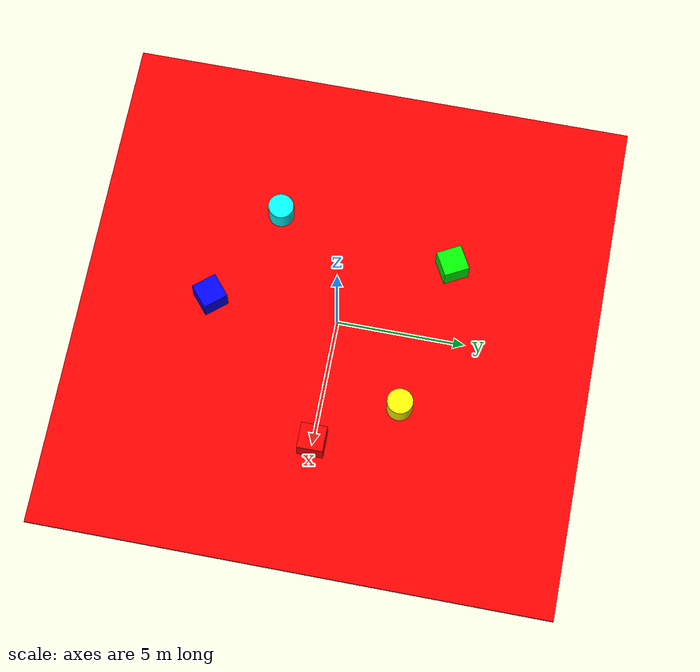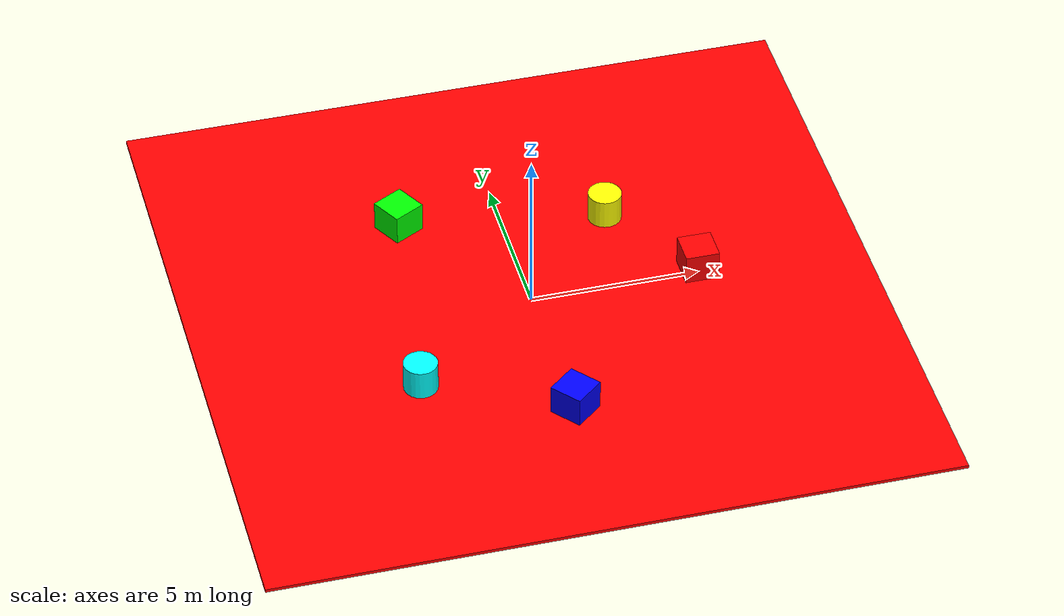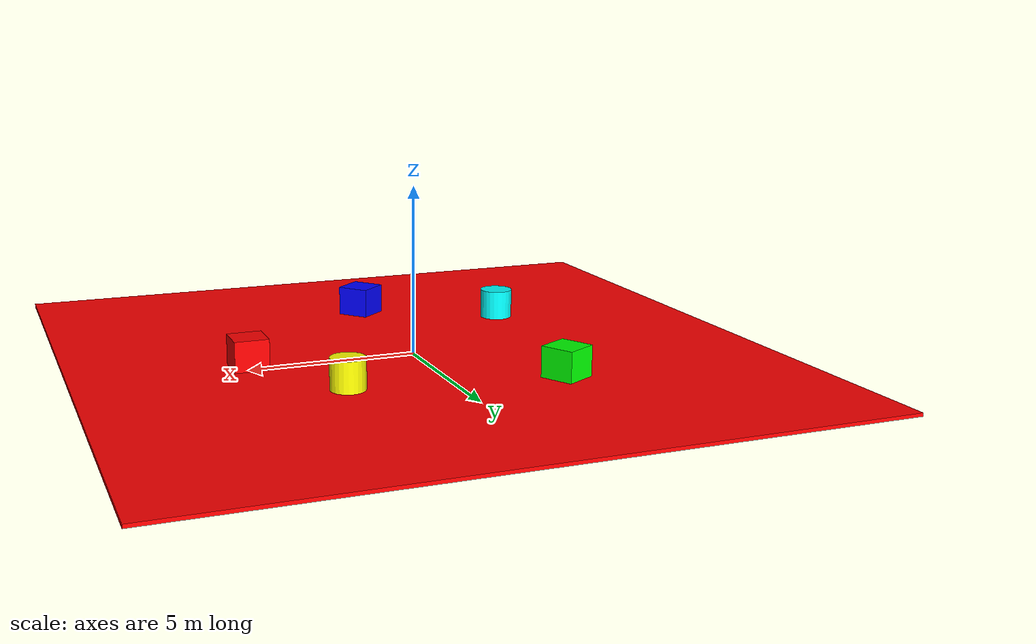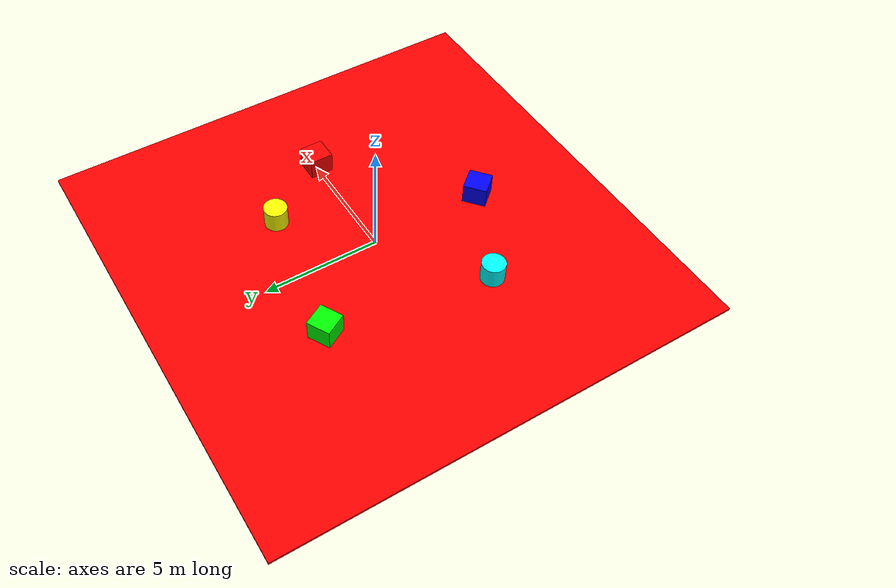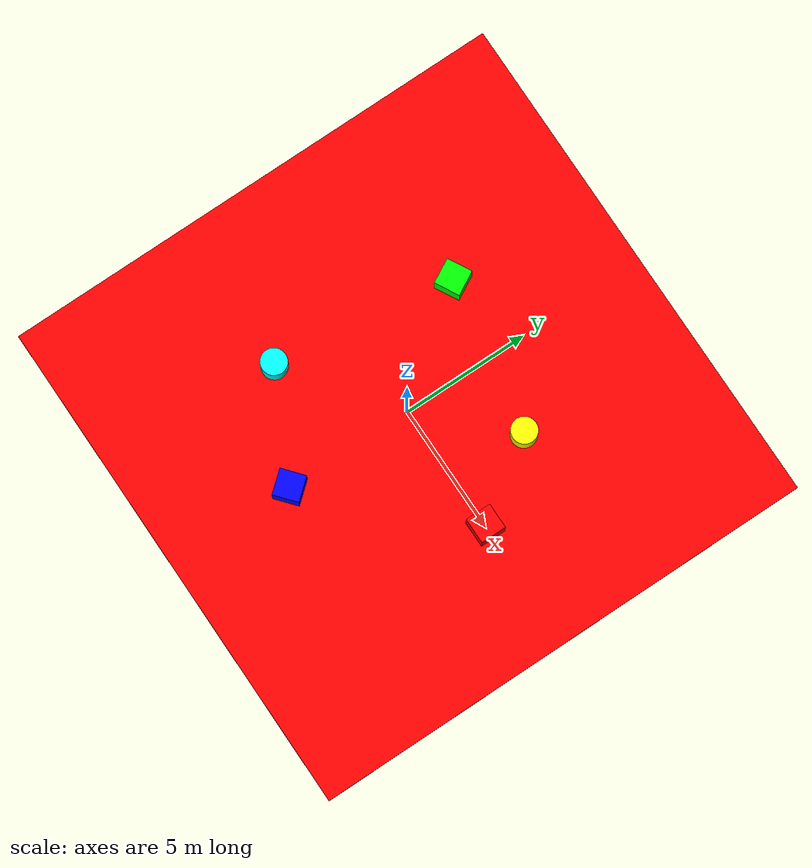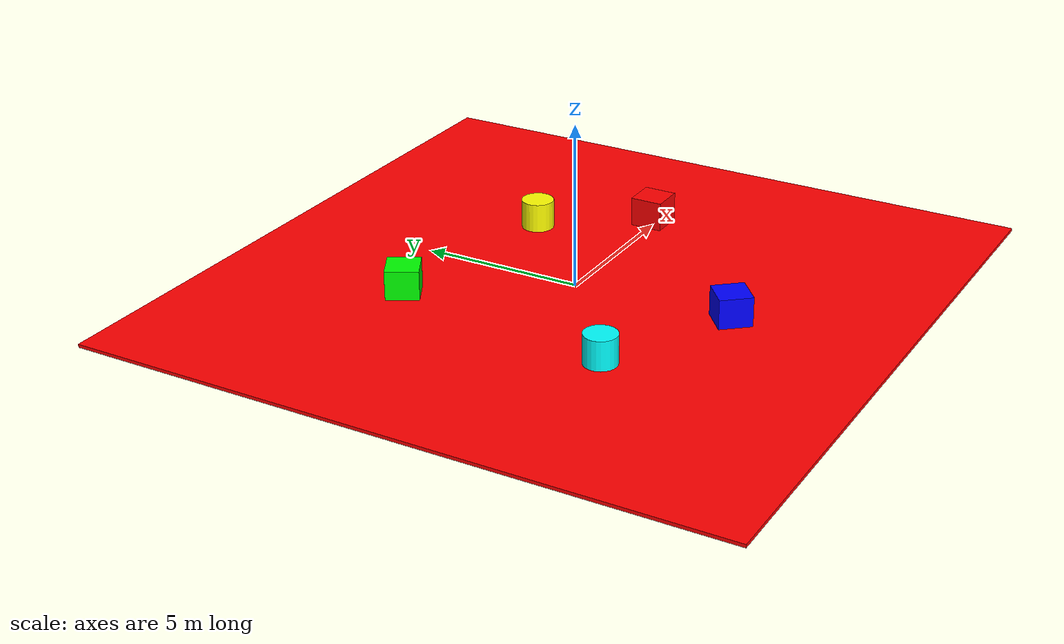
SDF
<?xml version="1.0" ?>
<sdf version="1.8">
  <world name="default">
    <physics name="1ms" type="ode">
      <max_step_size>0.001</max_step_size>
      <real_time_factor>1.0</real_time_factor>
    </physics>

    <!-- Plugins -->
    <plugin
      filename="gz-sim-physics-system"
      name="gz::sim::systems::Physics">
    </plugin>
    <plugin
      filename="gz-sim-sensors-system"
      name="gz::sim::systems::Sensors">
      <render_engine>ogre2</render_engine>
    </plugin>
    <plugin
      filename="gz-sim-contact-system"
      name="gz::sim::systems::Contact">
    </plugin>
    <plugin
      filename="gz-sim-user-commands-system"
      name="gz::sim::systems::UserCommands">
    </plugin>
    <plugin
      filename="gz-sim-scene-broadcaster-system"
      name="gz::sim::systems::SceneBroadcaster">
    </plugin>

    <!-- Lights -->
    <light type="directional" name="sun">
      <cast_shadows>true</cast_shadows>
      <pose>0 0 10 0 0 0</pose>
      <diffuse>0.8 0.8 0.8 1</diffuse>
      <specular>0.2 0.2 0.2 1</specular>
      <attenuation>
        <range>1000</range>
        <constant>0.9</constant>
        <linear>0.01</linear>
        <quadratic>0.001</quadratic>
      </attenuation>
      <direction>-0.5 0.1 -0.9</direction>
    </light>

 <!-- ✅ Proper Ground Plane model -->

    <!-- Box 1 -->
    <model name="box1">
      <pose>5 0 0.5 0 0 0</pose>
      <link name="box_link">
        <inertial>
          <inertia>
            <ixx>1</ixx>
            <ixy>0</ixy>
            <ixz>0</ixz>
            <iyy>1</iyy>
            <iyz>0</iyz>
            <izz>1</izz>
          </inertia>
          <mass>1.0</mass>
        </inertial>
        <collision name="box_collision">
          <geometry>
            <box>
              <size>1 1 1</size>
            </box>
          </geometry>
        </collision>
        <visual name="box_visual">
          <geometry>
            <box>
              <size>1 1 1</size>
            </box>
          </geometry>
          <material>
            <ambient>1 0 0 1</ambient>
            <diffuse>1 0 0 1</diffuse>
            <specular>1 0 0 1</specular>
          </material>
        </visual>
      </link>
      <static>true</static>
    </model>

    <!-- Box 2 -->
    <model name="box2">
      <pose>-3 4 0.5 0 0 0.5</pose>
      <link name="box_link">
        <inertial>
          <inertia>
            <ixx>1</ixx>
            <ixy>0</ixy>
            <ixz>0</ixz>
            <iyy>1</iyy>
            <iyz>0</iyz>
            <izz>1</izz>
          </inertia>
          <mass>1.0</mass>
        </inertial>
        <collision name="box_collision">
          <geometry>
            <box>
              <size>1 1 1</size>
            </box>
          </geometry>
        </collision>
        <visual name="box_visual">
          <geometry>
            <box>
              <size>1 1 1</size>
            </box>
          </geometry>
          <material>
            <ambient>0 1 0 1</ambient>
            <diffuse>0 1 0 1</diffuse>
            <specular>0 1 0 1</specular>
          </material>
        </visual>
      </link>
      <static>true</static>
    </model>

    <!-- Box 3 -->
    <model name="box3">
      <pose>0 -5 0.5 0 0 0.7</pose>
      <link name="box_link">
        <inertial>
          <inertia>
            <ixx>1</ixx>
            <ixy>0</ixy>
            <ixz>0</ixz>
            <iyy>1</iyy>
            <iyz>0</iyz>
            <izz>1</izz>
          </inertia>
          <mass>1.0</mass>
        </inertial>
        <collision name="box_collision">
          <geometry>
            <box>
              <size>1 1 1</size>
            </box>
          </geometry>
        </collision>
        <visual name="box_visual">
          <geometry>
            <box>
              <size>1 1 1</size>
            </box>
          </geometry>
          <material>
            <ambient>0 0 1 1</ambient>
            <diffuse>0 0 1 1</diffuse>
            <specular>0 0 1 1</specular>
          </material>
        </visual>
      </link>
      <static>true</static>
    </model>

    <!-- Cylinder 1 -->
    <model name="cylinder1">
      <pose>3 3 0.5 0 0 0</pose>
      <link name="cylinder_link">
        <inertial>
          <inertia>
            <ixx>0.1458</ixx>
            <ixy>0</ixy>
            <ixz>0</ixz>
            <iyy>0.1458</iyy>
            <iyz>0</iyz>
            <izz>0.125</izz>
          </inertia>
          <mass>1.0</mass>
        </inertial>
        <collision name="cylinder_collision">
          <geometry>
            <cylinder>
              <radius>0.5</radius>
              <length>1.0</length>
            </cylinder>
          </geometry>
        </collision>
        <visual name="cylinder_visual">
          <geometry>
            <cylinder>
              <radius>0.5</radius>
              <length>1.0</length>
            </cylinder>
          </geometry>
          <material>
            <ambient>1 1 0 1</ambient>
            <diffuse>1 1 0 1</diffuse>
            <specular>1 1 0 1</specular>
          </material>
        </visual>
      </link>
      <static>true</static>
    </model>

    <!-- Cylinder 2 -->
    <model name="cylinder2">
      <pose>-4 -3 0.5 0 0 0</pose>
      <link name="cylinder_link">
        <inertial>
          <inertia>
            <ixx>0.1458</ixx>
            <ixy>0</ixy>
            <ixz>0</ixz>
            <iyy>0.1458</iyy>
            <iyz>0</iyz>
            <izz>0.125</izz>
          </inertia>
          <mass>1.0</mass>
        </inertial>
        <collision name="cylinder_collision">
          <geometry>
            <cylinder>
              <radius>0.5</radius>
              <length>1.0</length>
            </cylinder>
          </geometry>
        </collision>
        <visual name="cylinder_visual">
          <geometry>
            <cylinder>
              <radius>0.5</radius>
              <length>1.0</length>
            </cylinder>
          </geometry>
          <material>
            <ambient>0 1 1 1</ambient>
            <diffuse>0 1 1 1</diffuse>
            <specular>0 1 1 1</specular>
          </material>
        </visual>
      </link>
      <static>true</static>
    </model>

<model name="test_block">
  <static>true</static>
  <pose>0 0 0.05 0 0 0</pose>

  <link name="link">
    <collision name="collision">
      <geometry>
        <box><size>20 20 0.1</size></box>
      </geometry>
      <surface>
        <contact>
          <collide_bitmask>0xFF</collide_bitmask>
        </contact>
        <friction>
          <ode>
            <mu>1.0</mu>
            <mu2>1.0</mu2>
          </ode>
        </friction>
      </surface>
    </collision>

    <visual name="visual">
      <geometry>
        <box><size>20 20 0.1</size></box>
      </geometry>
      <material>
        <ambient>1 0 0 1</ambient>
        <diffuse>1 0 0 1</diffuse>
      </material>
    </visual>

    <!-- 🟢 Add the contact sensor here -->
    <sensor name="contact_sensor" type="contact">
      <always_on>true</always_on>
      <update_rate>30</update_rate>
      <contact>
        <collision>collision</collision>
      </contact>
    </sensor>
  </link>

  <!-- 🟢 Add TouchPlugin at the model level -->
</model>

  </world>
</sdf>
